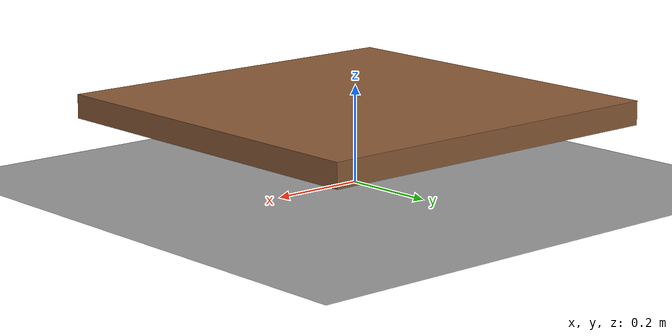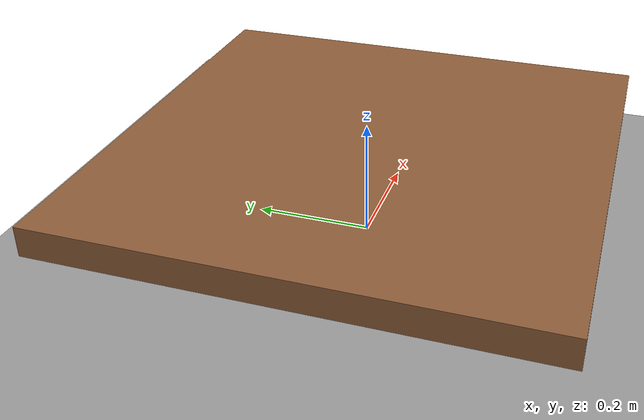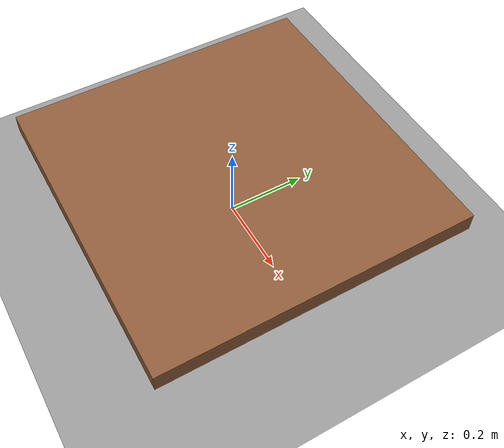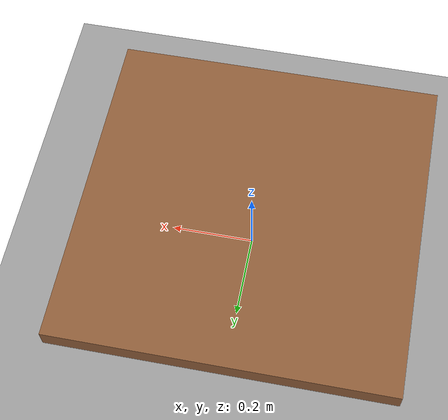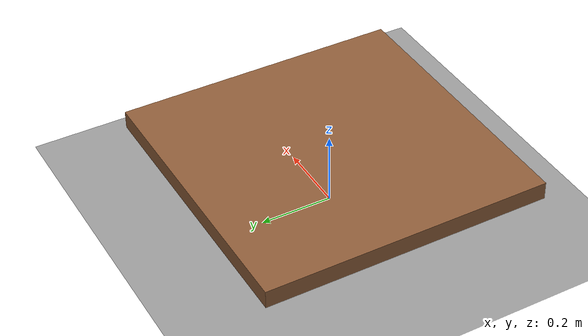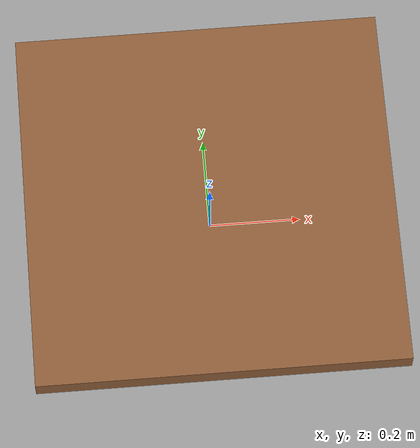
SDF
<?xml version="1.0" ?>
<sdf version="1.10">
  <world name="balance_test">
    <physics name="physics" type="ode">
      <max_step_size>0.004</max_step_size>
      <real_time_factor>1.0</real_time_factor>
    </physics>

    <plugin filename="gz-sim-physics-system" name="gz::sim::systems::Physics" />
    <plugin filename="gz-sim-user-commands-system" name="gz::sim::systems::UserCommands" />
    <plugin filename="gz-sim-scene-broadcaster-system" name="gz::sim::systems::SceneBroadcaster" />
    <plugin filename="gz-sim-sensors-system" name="gz::sim::systems::Sensors">
      <render_engine>ogre2</render_engine>
    </plugin>

    <gravity>0 0 -9.8</gravity>

    <light name="sun" type="directional">
      <cast_shadows>true</cast_shadows>
      <pose>0 0 10 0 0 0</pose>
      <diffuse>0.8 0.8 0.8 1</diffuse>
      <specular>0.2 0.2 0.2 1</specular>
      <attenuation>
        <range>1000</range>
        <constant>0.9</constant>
        <linear>0.01</linear>
        <quadratic>0.001</quadratic>
      </attenuation>
      <direction>-0.5 0.1 -0.9</direction>
    </light>

    <model name="ground_plane">
      <static>true</static>
      <link name="link">
        <collision name="collision">
          <geometry>
            <plane>
              <normal>0 0 1</normal>
              <size>100 100</size>
            </plane>
          </geometry>
        </collision>
        <visual name="visual">
          <geometry>
            <plane>
              <normal>0 0 1</normal>
              <size>100 100</size>
            </plane>
          </geometry>
          <material>
            <ambient>0.6 0.6 0.6 1</ambient>
            <diffuse>0.6 0.6 0.6 1</diffuse>
          </material>
        </visual>
      </link>
    </model>

    <model name="balance_board">
      <static>false</static>
      <pose>0 0 0 0 0 0</pose>

      <!-- Invisible anchor pinned to the world at the pivot point -->
      <link name="anchor">
        <pose>0 0 0.15 0 0 0</pose>
        <gravity>false</gravity>
        <inertial>
          <mass>1.0</mass>
          <inertia>
            <ixx>0.01</ixx>
            <iyy>0.01</iyy>
            <izz>0.01</izz>
            <ixy>0</ixy>
            <ixz>0</ixz>
            <iyz>0</iyz>
          </inertia>
        </inertial>
      </link>

      <link name="roll_arm">
        <pose>0 0 0.15 0 0 0</pose>
        <gravity>false</gravity>
        <inertial>
          <mass>1.0</mass>
          <inertia>
            <ixx>0.05</ixx>
            <iyy>0.05</iyy>
            <izz>0.05</izz>
            <ixy>0</ixy>
            <ixz>0</ixz>
            <iyz>0</iyz>
          </inertia>
        </inertial>
      </link>

      <link name="board">
        <pose>0 0 0.15 0 0 0</pose>
        <inertial>
          <mass>2.0</mass>
          <inertia>
            <ixx>0.05</ixx>
            <iyy>0.05</iyy>
            <izz>0.05</izz>
            <ixy>0</ixy>
            <ixz>0</ixz>
            <iyz>0</iyz>
          </inertia>
        </inertial>
        <collision name="collision">
          <geometry>
            <box>
              <size>0.8 0.8 0.05</size>
            </box>
          </geometry>
          <surface>
            <friction>
              <ode>
                <mu>10.0</mu>
                <mu2>10.0</mu2>
              </ode>
            </friction>
          </surface>
        </collision>
        <visual name="visual">
          <geometry>
            <box>
              <size>0.8 0.8 0.05</size>
            </box>
          </geometry>
          <material>
            <ambient>0.45 0.30 0.18 1</ambient>
            <diffuse>0.55 0.36 0.22 1</diffuse>
          </material>
        </visual>
      </link>

      <!-- Pin the anchor rigidly to the world -->
      <joint name="anchor_fixed" type="fixed">
        <parent>world</parent>
        <child>anchor</child>
      </joint>

      <!-- Roll axis: rotates roll_arm around world X -->
      <joint name="roll_hinge" type="revolute">
        <parent>anchor</parent>
        <child>roll_arm</child>
        <axis>
          <xyz>1 0 0</xyz>
          <limit>
            <lower>-0.25</lower>
            <upper>0.25</upper>
            <effort>1000.0</effort>
            <velocity>0.1</velocity>
          </limit>
          <dynamics>
            <damping>2.0</damping>
            <friction>0.0</friction>
          </dynamics>
        </axis>
      </joint>

      <!-- Pitch axis: rotates board around roll_arm's Y -->
      <joint name="pitch_hinge" type="revolute">
        <parent>roll_arm</parent>
        <child>board</child>
        <axis>
          <xyz>0 1 0</xyz>
          <limit>
            <lower>-0.25</lower>
            <upper>0.25</upper>
            <effort>1000.0</effort>
            <velocity>0.1</velocity>
          </limit>
          <dynamics>
            <damping>2.0</damping>
            <friction>0.0</friction>
          </dynamics>
        </axis>
      </joint>

      <!-- Gradually drive the roll joint to the commanded angle -->
      <plugin filename="gz-sim-joint-position-controller-system"
              name="gz::sim::systems::JointPositionController">
        <joint_name>roll_hinge</joint_name>
        <topic>/balance_board/roll_target</topic>
        <p_gain>1500.0</p_gain>
        <i_gain>0.0</i_gain>
        <d_gain>50.0</d_gain>
        <cmd_max>2000.0</cmd_max>
        <cmd_min>-2000.0</cmd_min>
      </plugin>

      <!-- Gradually drive the pitch joint to the commanded angle -->
      <plugin filename="gz-sim-joint-position-controller-system"
              name="gz::sim::systems::JointPositionController">
        <joint_name>pitch_hinge</joint_name>
        <topic>/balance_board/pitch_target</topic>
        <p_gain>1500.0</p_gain>
        <i_gain>0.0</i_gain>
        <d_gain>50.0</d_gain>
        <cmd_max>2000.0</cmd_max>
        <cmd_min>-2000.0</cmd_min>
      </plugin>
    </model>
  </world>
</sdf>
